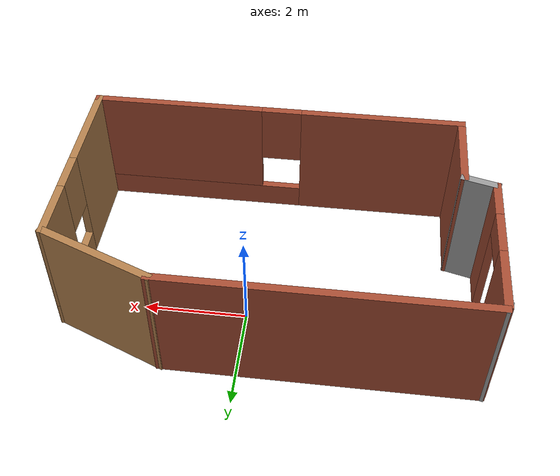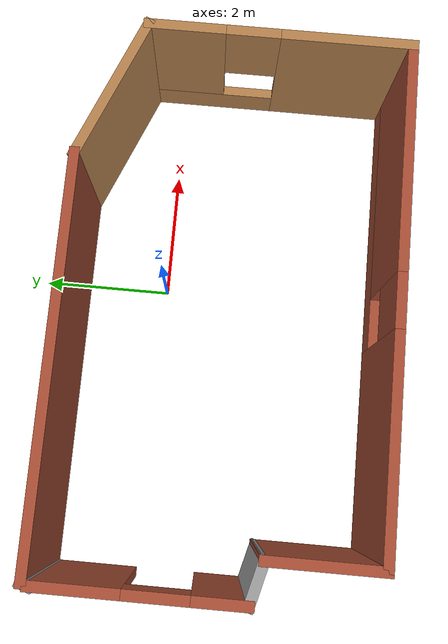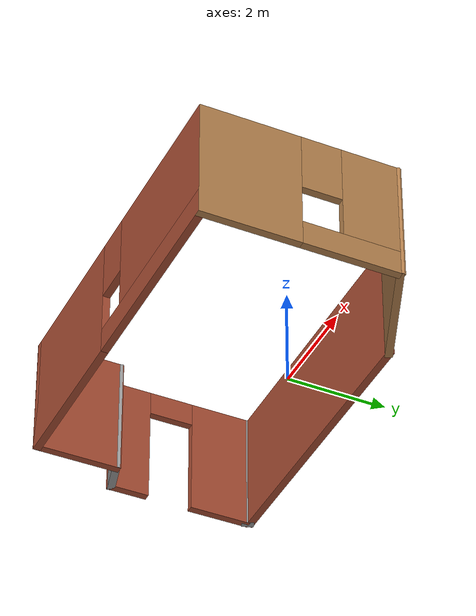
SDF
<?xml version='1.0'?>
<sdf version='1.6'>
  <model name='experiment'>
    <pose frame=''>-0.503691 -0.986181 0 0 -0 0</pose>
    <link name='Wall_0'>
      <collision name='Wall_0_Collision'>
        <geometry>
          <box>
            <size>6 0.15 2.5</size>
          </box>
        </geometry>
        <pose frame=''>0 0 1.25 0 -0 0</pose>
      </collision>
      <visual name='Wall_0_Visual'>
        <pose frame=''>0 0 1.25 0 -0 0</pose>
        <geometry>
          <box>
            <size>6 0.15 2.5</size>
          </box>
        </geometry>
        <material>
          <script>
            <uri>file://media/materials/scripts/gazebo.material</uri>
            <name>Gazebo/Bricks</name>
          </script>
          <ambient>1 1 1 1</ambient>
        </material>
        <meta>
          <layer>0</layer>
        </meta>
      </visual>
      <pose frame=''>-1.01131 2.33618 0 0 -0 3.14159</pose>
    </link>
    <link name='Wall_10'>
      <collision name='Wall_10_Collision'>
        <geometry>
          <box>
            <size>2.36702 0.15 2.5</size>
          </box>
        </geometry>
        <pose frame=''>0 0 1.25 0 -0 0</pose>
      </collision>
      <visual name='Wall_10_Visual'>
        <pose frame=''>0 0 1.25 0 -0 0</pose>
        <geometry>
          <box>
            <size>2.36702 0.15 2.5</size>
          </box>
        </geometry>
        <material>
          <script>
            <uri>file://media/materials/scripts/gazebo.material</uri>
            <name>Gazebo/Wood</name>
          </script>
          <ambient>1 1 1 1</ambient>
        </material>
        <meta>
          <layer>0</layer>
        </meta>
      </visual>
      <pose frame=''>2.93847 1.91353 0 0 -0 2.75042</pose>
    </link>
    <link name='Wall_2'>
      <collision name='Wall_2_Collision'>
        <geometry>
          <box>
            <size>0.244868 0.15 2.5</size>
          </box>
        </geometry>
        <pose frame=''>0 0 1.25 0 -0 0</pose>
      </collision>
      <visual name='Wall_2_Visual'>
        <pose frame=''>0 0 1.25 0 -0 0</pose>
        <geometry>
          <box>
            <size>0.244868 0.15 2.5</size>
          </box>
        </geometry>
        <material>
          <script>
            <uri>file://media/materials/scripts/gazebo.material</uri>
            <name>Gazebo/Grey</name>
          </script>
          <ambient>1 1 1 1</ambient>
        </material>
        <meta>
          <layer>0</layer>
        </meta>
      </visual>
      <pose frame=''>-3.95131 2.29118 0 0 -0 -1.89255</pose>
    </link>
    <link name='Wall_3'>
      <pose frame=''>-3.96631 0.821181 0 0 -0 -1.5708</pose>
      <visual name='Wall_3_Visual_0'>
        <pose frame=''>-0.8625 0 1.25 0 -0 0</pose>
        <geometry>
          <box>
            <size>1.275 0.15 2.5</size>
          </box>
        </geometry>
        <material>
          <script>
            <uri>file://media/materials/scripts/gazebo.material</uri>
            <name>Gazebo/Bricks</name>
          </script>
          <ambient>1 1 1 1</ambient>
        </material>
        <meta>
          <layer>0</layer>
        </meta>
      </visual>
      <collision name='Wall_3_Collision_0'>
        <geometry>
          <box>
            <size>1.275 0.15 2.5</size>
          </box>
        </geometry>
        <pose frame=''>-0.8625 0 1.25 0 -0 0</pose>
      </collision>
      <visual name='Wall_3_Visual_1'>
        <pose frame=''>1.0875 0 1.25 0 -0 0</pose>
        <geometry>
          <box>
            <size>0.825 0.15 2.5</size>
          </box>
        </geometry>
        <material>
          <script>
            <uri>file://media/materials/scripts/gazebo.material</uri>
            <name>Gazebo/Bricks</name>
          </script>
          <ambient>1 1 1 1</ambient>
        </material>
        <meta>
          <layer>0</layer>
        </meta>
      </visual>
      <collision name='Wall_3_Collision_1'>
        <geometry>
          <box>
            <size>0.825 0.15 2.5</size>
          </box>
        </geometry>
        <pose frame=''>1.0875 0 1.25 0 -0 0</pose>
      </collision>
      <visual name='Wall_3_Visual_2'>
        <pose frame=''>0.225 0 2.25 0 -0 0</pose>
        <geometry>
          <box>
            <size>0.9 0.15 0.5</size>
          </box>
        </geometry>
        <material>
          <script>
            <uri>file://media/materials/scripts/gazebo.material</uri>
            <name>Gazebo/Bricks</name>
          </script>
          <ambient>1 1 1 1</ambient>
        </material>
        <meta>
          <layer>0</layer>
        </meta>
      </visual>
      <collision name='Wall_3_Collision_2'>
        <geometry>
          <box>
            <size>0.9 0.15 0.5</size>
          </box>
        </geometry>
        <pose frame=''>0.225 0 2.25 0 -0 0</pose>
      </collision>
    </link>
    <link name='Wall_4'>
      <collision name='Wall_4_Collision'>
        <geometry>
          <box>
            <size>0.75 0.15 2.5</size>
          </box>
        </geometry>
        <pose frame=''>0 0 1.25 0 -0 0</pose>
      </collision>
      <visual name='Wall_4_Visual'>
        <pose frame=''>0 0 1.25 0 -0 0</pose>
        <geometry>
          <box>
            <size>0.75 0.15 2.5</size>
          </box>
        </geometry>
        <material>
          <script>
            <uri>file://media/materials/scripts/gazebo.material</uri>
            <name>Gazebo/Grey</name>
          </script>
          <ambient>1 1 1 1</ambient>
        </material>
        <meta>
          <layer>0</layer>
        </meta>
      </visual>
      <pose frame=''>-3.67653 -0.681465 0 0 -0 -0.261799</pose>
    </link>
    <link name='Wall_6'>
      <collision name='Wall_6_Collision'>
        <geometry>
          <box>
            <size>1.75 0.15 2.5</size>
          </box>
        </geometry>
        <pose frame=''>0 0 1.25 0 -0 0</pose>
      </collision>
      <visual name='Wall_6_Visual'>
        <pose frame=''>0 0 1.25 0 -0 0</pose>
        <geometry>
          <box>
            <size>1.75 0.15 2.5</size>
          </box>
        </geometry>
        <material>
          <script>
            <uri>file://media/materials/scripts/gazebo.material</uri>
            <name>Gazebo/Bricks</name>
          </script>
          <ambient>1 1 1 1</ambient>
        </material>
        <meta>
          <layer>0</layer>
        </meta>
      </visual>
      <pose frame=''>-3.38675 -1.55911 0 0 -0 -1.5708</pose>
    </link>
    <link name='Wall_7'>
      <pose frame=''>0.288247 -2.35911 0 0 -0 0</pose>
      <visual name='Wall_7_Visual_0'>
        <pose frame=''>-2.12228 0 1.25 0 -0 0</pose>
        <geometry>
          <box>
            <size>3.25544 0.15 2.5</size>
          </box>
        </geometry>
        <material>
          <script>
            <uri>file://media/materials/scripts/gazebo.material</uri>
            <name>Gazebo/Bricks</name>
          </script>
          <ambient>1 1 1 1</ambient>
        </material>
        <meta>
          <layer>0</layer>
        </meta>
      </visual>
      <collision name='Wall_7_Collision_0'>
        <geometry>
          <box>
            <size>3.25544 0.15 2.5</size>
          </box>
        </geometry>
        <pose frame=''>-2.12228 0 1.25 0 -0 0</pose>
      </collision>
      <visual name='Wall_7_Visual_1'>
        <pose frame=''>1.62772 0 0.25 0 -0 0</pose>
        <geometry>
          <box>
            <size>4.24456 0.15 0.5</size>
          </box>
        </geometry>
        <material>
          <script>
            <uri>file://media/materials/scripts/gazebo.material</uri>
            <name>Gazebo/Bricks</name>
          </script>
          <ambient>1 1 1 1</ambient>
        </material>
        <meta>
          <layer>0</layer>
        </meta>
      </visual>
      <collision name='Wall_7_Collision_1'>
        <geometry>
          <box>
            <size>4.24456 0.15 0.5</size>
          </box>
        </geometry>
        <pose frame=''>1.62772 0 0.25 0 -0 0</pose>
      </collision>
      <visual name='Wall_7_Visual_2'>
        <pose frame=''>2.02772 0 1.5 0 -0 0</pose>
        <geometry>
          <box>
            <size>3.44455 0.15 2</size>
          </box>
        </geometry>
        <material>
          <script>
            <uri>file://media/materials/scripts/gazebo.material</uri>
            <name>Gazebo/Bricks</name>
          </script>
          <ambient>1 1 1 1</ambient>
        </material>
        <meta>
          <layer>0</layer>
        </meta>
      </visual>
      <collision name='Wall_7_Collision_2'>
        <geometry>
          <box>
            <size>3.44455 0.15 2</size>
          </box>
        </geometry>
        <pose frame=''>2.02772 0 1.5 0 -0 0</pose>
      </collision>
      <visual name='Wall_7_Visual_3'>
        <pose frame=''>-0.094555 0 1.9 0 -0 0</pose>
        <geometry>
          <box>
            <size>0.8 0.15 1.2</size>
          </box>
        </geometry>
        <material>
          <script>
            <uri>file://media/materials/scripts/gazebo.material</uri>
            <name>Gazebo/Bricks</name>
          </script>
          <ambient>1 1 1 1</ambient>
        </material>
        <meta>
          <layer>0</layer>
        </meta>
      </visual>
      <collision name='Wall_7_Collision_3'>
        <geometry>
          <box>
            <size>0.8 0.15 1.2</size>
          </box>
        </geometry>
        <pose frame=''>-0.094555 0 1.9 0 -0 0</pose>
      </collision>
    </link>
    <link name='Wall_8'>
      <pose frame=''>3.96325 -0.434111 0 0 -0 1.5708</pose>
      <visual name='Wall_8_Visual_0'>
        <pose frame=''>-1.00485 0 1.25 0 -0 0</pose>
        <geometry>
          <box>
            <size>1.99029 0.15 2.5</size>
          </box>
        </geometry>
        <material>
          <script>
            <uri>file://media/materials/scripts/gazebo.material</uri>
            <name>Gazebo/Wood</name>
          </script>
          <ambient>1 1 1 1</ambient>
        </material>
        <meta>
          <layer>0</layer>
        </meta>
      </visual>
      <collision name='Wall_8_Collision_0'>
        <geometry>
          <box>
            <size>1.99029 0.15 2.5</size>
          </box>
        </geometry>
        <pose frame=''>-1.00485 0 1.25 0 -0 0</pose>
      </collision>
      <visual name='Wall_8_Visual_1'>
        <pose frame=''>0.995146 0 0.25 0 -0 0</pose>
        <geometry>
          <box>
            <size>2.00971 0.15 0.5</size>
          </box>
        </geometry>
        <material>
          <script>
            <uri>file://media/materials/scripts/gazebo.material</uri>
            <name>Gazebo/Wood</name>
          </script>
          <ambient>1 1 1 1</ambient>
        </material>
        <meta>
          <layer>0</layer>
        </meta>
      </visual>
      <collision name='Wall_8_Collision_1'>
        <geometry>
          <box>
            <size>2.00971 0.15 0.5</size>
          </box>
        </geometry>
        <pose frame=''>0.995146 0 0.25 0 -0 0</pose>
      </collision>
      <visual name='Wall_8_Visual_2'>
        <pose frame=''>1.39515 0 1.5 0 -0 0</pose>
        <geometry>
          <box>
            <size>1.20971 0.15 2</size>
          </box>
        </geometry>
        <material>
          <script>
            <uri>file://media/materials/scripts/gazebo.material</uri>
            <name>Gazebo/Wood</name>
          </script>
          <ambient>1 1 1 1</ambient>
        </material>
        <meta>
          <layer>0</layer>
        </meta>
      </visual>
      <collision name='Wall_8_Collision_2'>
        <geometry>
          <box>
            <size>1.20971 0.15 2</size>
          </box>
        </geometry>
        <pose frame=''>1.39515 0 1.5 0 -0 0</pose>
      </collision>
      <visual name='Wall_8_Visual_3'>
        <pose frame=''>0.390291 0 1.9 0 -0 0</pose>
        <geometry>
          <box>
            <size>0.8 0.15 1.2</size>
          </box>
        </geometry>
        <material>
          <script>
            <uri>file://media/materials/scripts/gazebo.material</uri>
            <name>Gazebo/Wood</name>
          </script>
          <ambient>1 1 1 1</ambient>
        </material>
        <meta>
          <layer>0</layer>
        </meta>
      </visual>
      <collision name='Wall_8_Collision_3'>
        <geometry>
          <box>
            <size>0.8 0.15 1.2</size>
          </box>
        </geometry>
        <pose frame=''>0.390291 0 1.9 0 -0 0</pose>
      </collision>
    </link>
    <static>1</static>
  </model>
</sdf>
